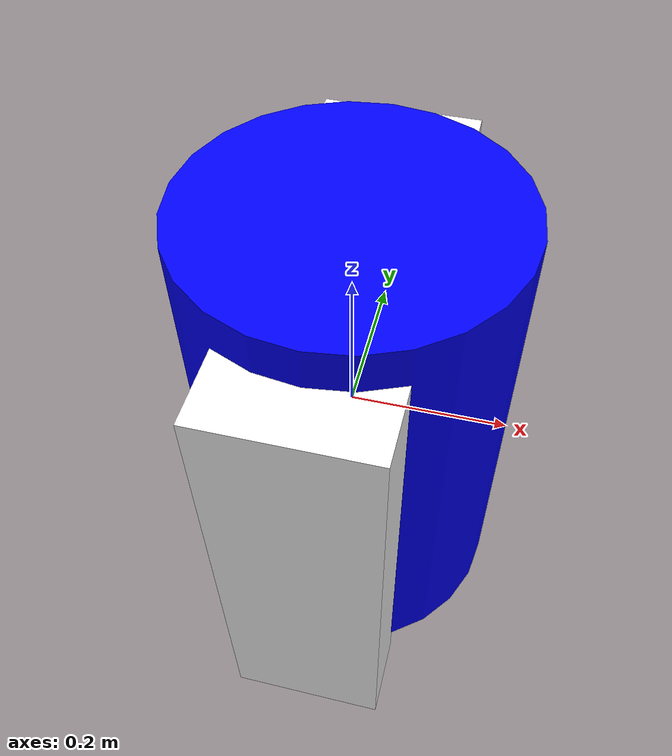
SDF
<sdf version='1.11'>
  <model name='multipleshapes'>
    <link name='base_link'>
      <inertial>
        <pose>0 0 -0.033333333333333333 0 0 0</pose>
        <mass>1.5</mass>
        <inertia>
          <ixx>0.10006666666666671</ixx>
          <ixy>0</ixy>
          <ixz>1.632862398863138e-18</ixz>
          <iyy>0.054166666666666662</iyy>
          <iyz>0</iyz>
          <izz>0.062566666666666659</izz>
        </inertia>
      </inertial>
      <collision name='base_link_collision'>
        <pose>0.14999999999999999 0 0.074999999999999997 0 0 0</pose>
        <geometry>
          <cylinder>
            <length>0.59999999999999998</length>
            <radius>0.20000000000000001</radius>
          </cylinder>
        </geometry>
      </collision>
      <collision name='base_link_fixed_joint_lump__left_leg_collision_1'>
        <pose>0 0.22 -0.049999999999999989 0 1.5707963267948966 0</pose>
        <geometry>
          <box>
            <size>0.59999999999999998 0.10000000000000001 0.20000000000000001</size>
          </box>
        </geometry>
      </collision>
      <collision name='base_link_fixed_joint_lump__right_leg_collision_2'>
        <pose>0 -0.22 -0.049999999999999989 0 1.5707963267948966 0</pose>
        <geometry>
          <box>
            <size>0.59999999999999998 0.10000000000000001 0.20000000000000001</size>
          </box>
        </geometry>
      </collision>
      <visual name='base_link_visual'>
        <pose>0 0 0 0 0 0</pose>
        <geometry>
          <cylinder>
            <length>0.59999999999999998</length>
            <radius>0.20000000000000001</radius>
          </cylinder>
        </geometry>
        <material>
          <diffuse>0 0 1 1</diffuse>
          <ambient>0 0 1 1</ambient>
        </material>
      </visual>
      <visual name='base_link_fixed_joint_lump__left_leg_visual_1'>
        <pose>0 0.22 -0.049999999999999989 0 1.5707963267948966 0</pose>
        <geometry>
          <box>
            <size>0.59999999999999998 0.10000000000000001 0.20000000000000001</size>
          </box>
        </geometry>
        <material>
          <diffuse>1 1 1 1</diffuse>
          <ambient>1 1 1 1</ambient>
        </material>
      </visual>
      <visual name='base_link_fixed_joint_lump__right_leg_visual_2'>
        <pose>0 -0.22 -0.049999999999999989 0 1.5707963267948966 0</pose>
        <geometry>
          <box>
            <size>0.59999999999999998 0.10000000000000001 0.20000000000000001</size>
          </box>
        </geometry>
        <material>
          <diffuse>1 1 1 1</diffuse>
          <ambient>1 1 1 1</ambient>
        </material>
      </visual>
    </link>
    <frame name='base_to_left_leg' attached_to='base_link'>
      <pose>0 0.22 0.25 0 0 0</pose>
    </frame>
    <frame name='left_leg' attached_to='base_to_left_leg'>
      <pose>0 0 0 0 0 0</pose>
    </frame>
    <frame name='base_to_right_leg' attached_to='base_link'>
      <pose>0 -0.22 0.25 0 0 0</pose>
    </frame>
    <frame name='right_leg' attached_to='base_to_right_leg'>
      <pose>0 0 0 0 0 0</pose>
    </frame>
  </model>
</sdf>
